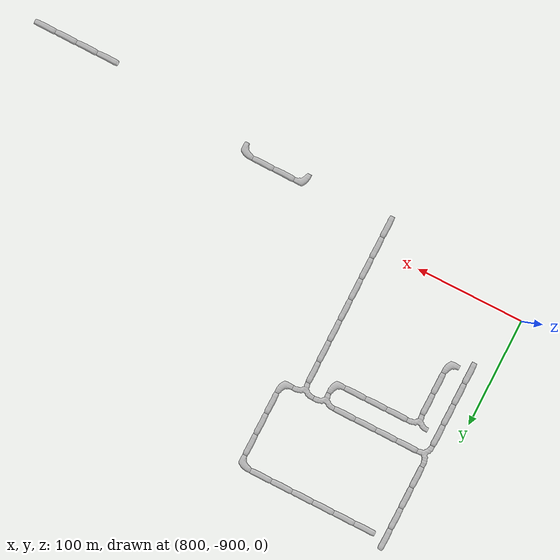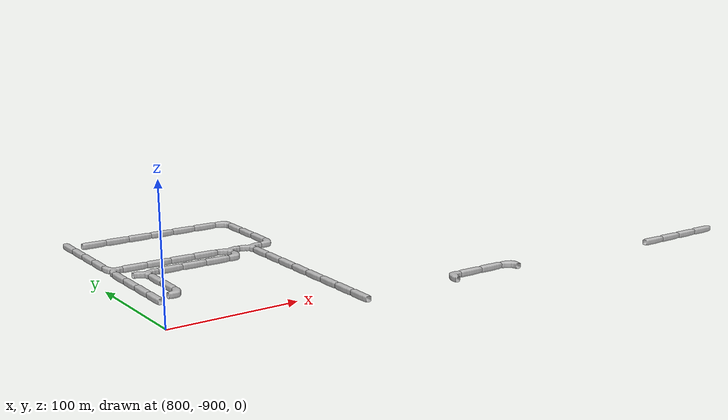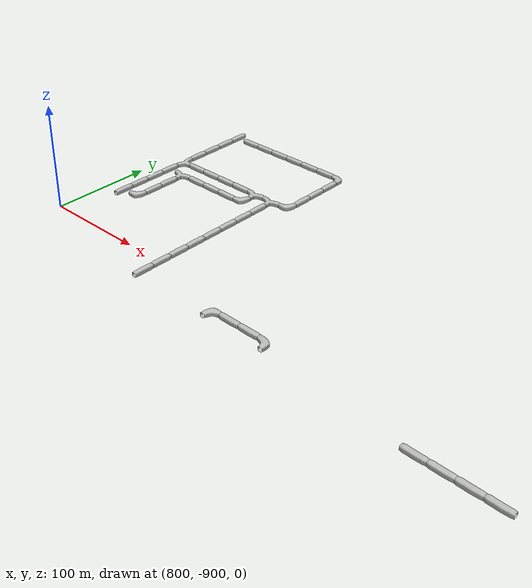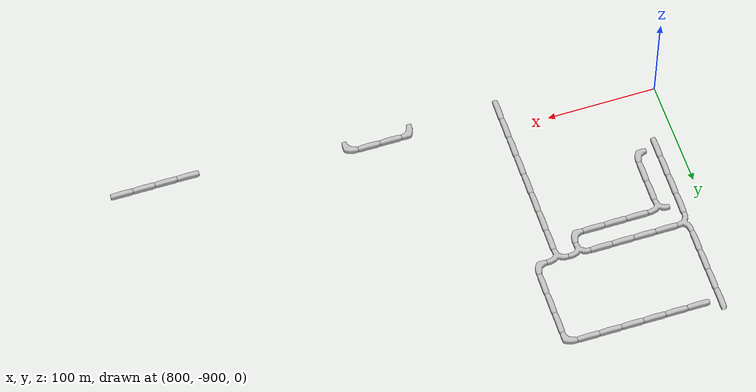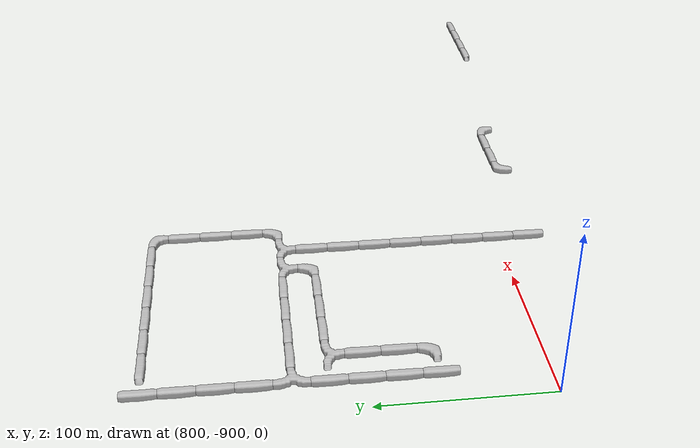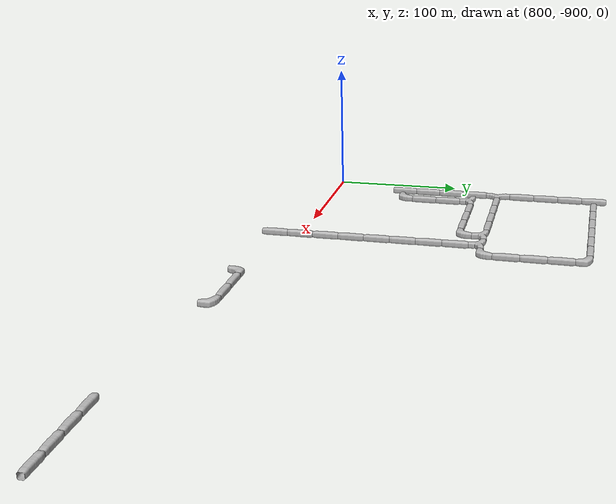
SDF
<sdf version="1.6">
 <world name="cave_16000_8">
  <include>
   <static>true</static>
   <name>cave_41_-34</name>
   <pose>820 -680 0 0 0 0.0</pose>
   <uri>model://cave_straight_20m</uri>
  </include>
  <include>
   <static>true</static>
   <name>cave_41_-35</name>
   <pose>820 -700 0 0 0 0.0</pose>
   <uri>model://cave_straight_20m</uri>
  </include>
  <include>
   <static>true</static>
   <name>cave_41_-36</name>
   <pose>820 -720 0 0 0 0.0</pose>
   <uri>model://cave_straight_20m</uri>
  </include>
  <include>
   <static>true</static>
   <name>cave_41_-37</name>
   <pose>820 -740 0 0 0 0.0</pose>
   <uri>model://cave_straight_20m</uri>
  </include>
  <include>
   <static>true</static>
   <name>cave_41_-38</name>
   <pose>820 -760 0 0 0 -1.5707963267948966</pose>
   <uri>model://cave_3way_20m</uri>
  </include>
  <include>
   <static>true</static>
   <name>cave_42_-38</name>
   <pose>840 -760 0 0 0 1.5707963267948966</pose>
   <uri>model://cave_straight_20m</uri>
  </include>
  <include>
   <static>true</static>
   <name>cave_43_-38</name>
   <pose>860 -760 0 0 0 1.5707963267948966</pose>
   <uri>model://cave_straight_20m</uri>
  </include>
  <include>
   <static>true</static>
   <name>cave_44_-38</name>
   <pose>880 -760 0 0 0 1.5707963267948966</pose>
   <uri>model://cave_straight_20m</uri>
  </include>
  <include>
   <static>true</static>
   <name>cave_45_-38</name>
   <pose>900 -760 0 0 0 1.5707963267948966</pose>
   <uri>model://cave_straight_20m</uri>
  </include>
  <include>
   <static>true</static>
   <name>cave_46_-38</name>
   <pose>920 -760 0 0 0 3.141592653589793</pose>
   <uri>model://cave_3way_20m</uri>
  </include>
  <include>
   <static>true</static>
   <name>cave_47_-38</name>
   <pose>940 -760 0 0 0 3.141592653589793</pose>
   <uri>model://cave_3way_20m</uri>
  </include>
  <include>
   <static>true</static>
   <name>cave_48_-38</name>
   <pose>960 -760 0 0 0 1.5707963267948966</pose>
   <uri>model://cave_L_20m</uri>
  </include>
  <include>
   <static>true</static>
   <name>cave_48_-37</name>
   <pose>960 -740 0 0 0 0.0</pose>
   <uri>model://cave_straight_20m</uri>
  </include>
  <include>
   <static>true</static>
   <name>cave_48_-36</name>
   <pose>960 -720 0 0 0 0.0</pose>
   <uri>model://cave_straight_20m</uri>
  </include>
  <include>
   <static>true</static>
   <name>cave_48_-35</name>
   <pose>960 -700 0 0 0 0.0</pose>
   <uri>model://cave_straight_20m</uri>
  </include>
  <include>
   <static>true</static>
   <name>cave_48_-34</name>
   <pose>960 -680 0 0 0 3.141592653589793</pose>
   <uri>model://cave_L_20m</uri>
  </include>
  <include>
   <static>true</static>
   <name>cave_47_-34</name>
   <pose>940 -680 0 0 0 1.5707963267948966</pose>
   <uri>model://cave_straight_20m</uri>
  </include>
  <include>
   <static>true</static>
   <name>cave_46_-34</name>
   <pose>920 -680 0 0 0 1.5707963267948966</pose>
   <uri>model://cave_straight_20m</uri>
  </include>
  <include>
   <static>true</static>
   <name>cave_45_-34</name>
   <pose>900 -680 0 0 0 1.5707963267948966</pose>
   <uri>model://cave_straight_20m</uri>
  </include>
  <include>
   <static>true</static>
   <name>cave_44_-34</name>
   <pose>880 -680 0 0 0 1.5707963267948966</pose>
   <uri>model://cave_straight_20m</uri>
  </include>
  <include>
   <static>true</static>
   <name>cave_43_-34</name>
   <pose>860 -680 0 0 0 1.5707963267948966</pose>
   <uri>model://cave_straight_20m</uri>
  </include>
  <include>
   <static>true</static>
   <name>cave_42_-34</name>
   <pose>840 -680 0 0 0 1.5707963267948966</pose>
   <uri>model://cave_straight_20m</uri>
  </include>
  <include>
   <static>true</static>
   <name>cave_47_-39</name>
   <pose>940 -780 0 0 0 0.0</pose>
   <uri>model://cave_straight_20m</uri>
  </include>
  <include>
   <static>true</static>
   <name>cave_47_-40</name>
   <pose>940 -800 0 0 0 0.0</pose>
   <uri>model://cave_straight_20m</uri>
  </include>
  <include>
   <static>true</static>
   <name>cave_47_-41</name>
   <pose>940 -820 0 0 0 0.0</pose>
   <uri>model://cave_straight_20m</uri>
  </include>
  <include>
   <static>true</static>
   <name>cave_47_-42</name>
   <pose>940 -840 0 0 0 0.0</pose>
   <uri>model://cave_straight_20m</uri>
  </include>
  <include>
   <static>true</static>
   <name>cave_47_-43</name>
   <pose>940 -860 0 0 0 0.0</pose>
   <uri>model://cave_straight_20m</uri>
  </include>
  <include>
   <static>true</static>
   <name>cave_47_-44</name>
   <pose>940 -880 0 0 0 0.0</pose>
   <uri>model://cave_straight_20m</uri>
  </include>
  <include>
   <static>true</static>
   <name>cave_47_-45</name>
   <pose>940 -900 0 0 0 0.0</pose>
   <uri>model://cave_straight_20m</uri>
  </include>
  <include>
   <static>true</static>
   <name>cave_47_-46</name>
   <pose>940 -920 0 0 0 0.0</pose>
   <uri>model://cave_straight_20m</uri>
  </include>
  <include>
   <static>true</static>
   <name>cave_61_-47</name>
   <pose>1220 -940 0 0 0 1.5707963267948966</pose>
   <uri>model://cave_straight_20m</uri>
  </include>
  <include>
   <static>true</static>
   <name>cave_62_-47</name>
   <pose>1240 -940 0 0 0 1.5707963267948966</pose>
   <uri>model://cave_straight_20m</uri>
  </include>
  <include>
   <static>true</static>
   <name>cave_63_-47</name>
   <pose>1260 -940 0 0 0 1.5707963267948966</pose>
   <uri>model://cave_straight_20m</uri>
  </include>
  <include>
   <static>true</static>
   <name>cave_64_-47</name>
   <pose>1280 -940 0 0 0 1.5707963267948966</pose>
   <uri>model://cave_straight_20m</uri>
  </include>
  <include>
   <static>true</static>
   <name>cave_51_-46</name>
   <pose>1020 -920 0 0 0 -1.5707963267948966</pose>
   <uri>model://cave_L_20m</uri>
  </include>
  <include>
   <static>true</static>
   <name>cave_52_-46</name>
   <pose>1040 -920 0 0 0 1.5707963267948966</pose>
   <uri>model://cave_straight_20m</uri>
  </include>
  <include>
   <static>true</static>
   <name>cave_53_-46</name>
   <pose>1060 -920 0 0 0 1.5707963267948966</pose>
   <uri>model://cave_straight_20m</uri>
  </include>
  <include>
   <static>true</static>
   <name>cave_54_-46</name>
   <pose>1080 -920 0 0 0 3.141592653589793</pose>
   <uri>model://cave_L_20m</uri>
  </include>
  <include>
   <static>true</static>
   <name>cave_46_-39</name>
   <pose>920 -780 0 0 0 1.5707963267948966</pose>
   <uri>model://cave_L_20m</uri>
  </include>
  <include>
   <static>true</static>
   <name>cave_45_-39</name>
   <pose>900 -780 0 0 0 1.5707963267948966</pose>
   <uri>model://cave_straight_20m</uri>
  </include>
  <include>
   <static>true</static>
   <name>cave_44_-39</name>
   <pose>880 -780 0 0 0 1.5707963267948966</pose>
   <uri>model://cave_straight_20m</uri>
  </include>
  <include>
   <static>true</static>
   <name>cave_43_-39</name>
   <pose>860 -780 0 0 0 1.5707963267948966</pose>
   <uri>model://cave_straight_20m</uri>
  </include>
  <include>
   <static>true</static>
   <name>cave_42_-39</name>
   <pose>840 -780 0 0 0 3.141592653589793</pose>
   <uri>model://cave_3way_20m</uri>
  </include>
  <include>
   <static>true</static>
   <name>cave_42_-40</name>
   <pose>840 -800 0 0 0 0.0</pose>
   <uri>model://cave_straight_20m</uri>
  </include>
  <include>
   <static>true</static>
   <name>cave_42_-41</name>
   <pose>840 -820 0 0 0 0.0</pose>
   <uri>model://cave_straight_20m</uri>
  </include>
  <include>
   <static>true</static>
   <name>cave_42_-42</name>
   <pose>840 -840 0 0 0 1.5707963267948966</pose>
   <uri>model://cave_L_20m</uri>
  </include>
  <include>
   <static>true</static>
   <name>cave_41_-39</name>
   <pose>820 -780 0 0 0 0.0</pose>
   <uri>model://cave_straight_20m</uri>
  </include>
  <include>
   <static>true</static>
   <name>cave_41_-40</name>
   <pose>820 -800 0 0 0 0.0</pose>
   <uri>model://cave_straight_20m</uri>
  </include>
  <include>
   <static>true</static>
   <name>cave_41_-41</name>
   <pose>820 -820 0 0 0 0.0</pose>
   <uri>model://cave_straight_20m</uri>
  </include>
  <include>
   <static>true</static>
   <name>cave_41_-42</name>
   <pose>820 -840 0 0 0 0.0</pose>
   <uri>model://cave_straight_20m</uri>
  </include>
 </world>
</sdf>
